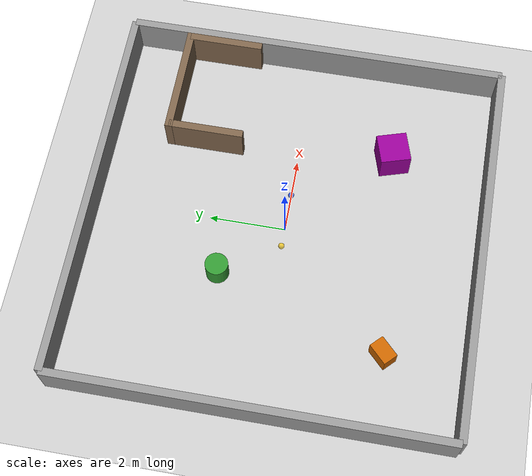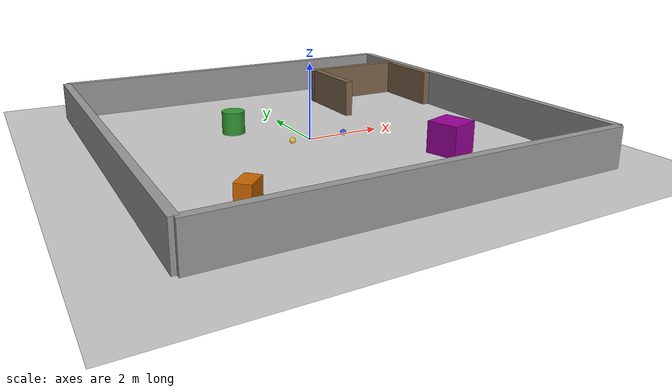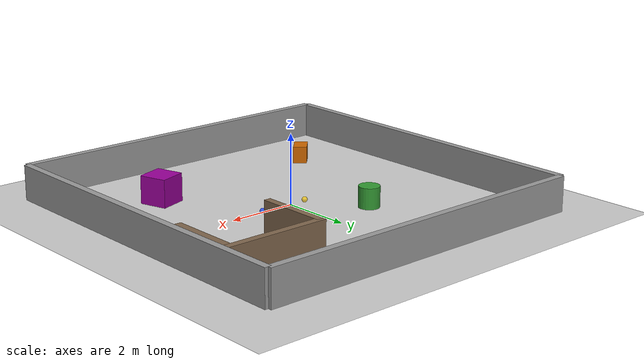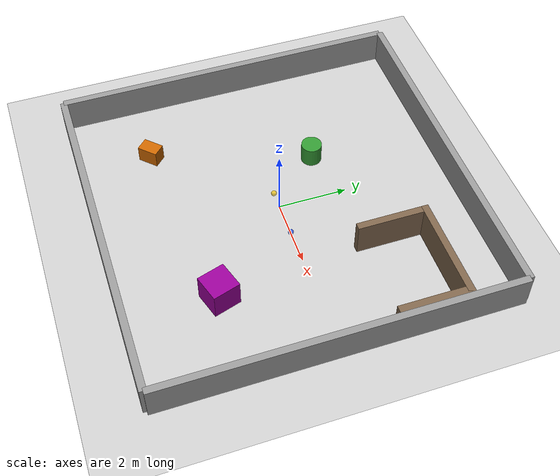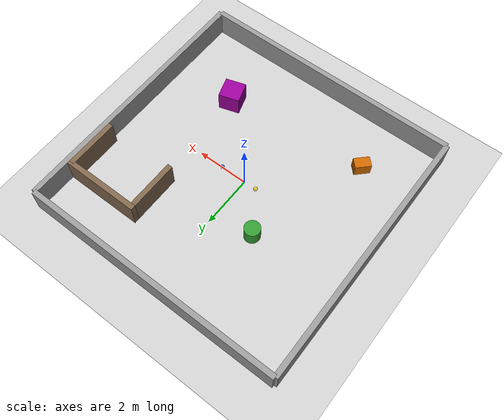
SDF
<?xml version="1.0"?>
<sdf version="1.6">
  <world name="exploration_world">

    <!-- ====================================================
         PHYSICS
         ==================================================== -->
    <physics name="default_physics" default="true" type="ode">
      <max_step_size>0.001</max_step_size>
      <real_time_factor>1.0</real_time_factor>
      <real_time_update_rate>1000</real_time_update_rate>
      <ode>
        <solver>
          <type>quick</type>
          <iters>150</iters>
          <precon_iters>0</precon_iters>
          <sor>1.400000</sor>
        </solver>
        <constraints>
          <cfm>0.00001</cfm>
          <erp>0.2</erp>
          <contact_max_correcting_vel>2000.000000</contact_max_correcting_vel>
          <contact_surface_layer>0.01000</contact_surface_layer>
        </constraints>
      </ode>
    </physics>

    <!-- ====================================================
         SCENE / LIGHTING
         ==================================================== -->
    <scene>
      <ambient>0.4 0.4 0.4 1</ambient>
      <background>0.7 0.7 0.7 1</background>
      <shadows>true</shadows>
    </scene>

    <light name="sun" type="directional">
      <cast_shadows>true</cast_shadows>
      <pose>0 0 10 0 0 0</pose>
      <diffuse>0.8 0.8 0.8 1</diffuse>
      <specular>0.2 0.2 0.2 1</specular>
      <attenuation>
        <range>1000</range>
        <constant>0.9</constant>
        <linear>0.01</linear>
        <quadratic>0.001</quadratic>
      </attenuation>
      <direction>-0.5 0.1 -0.9</direction>
    </light>

    <!-- ====================================================
         GROUND PLANE
         ==================================================== -->
    <model name="ground_plane">
      <static>true</static>
      <link name="link">
        <collision name="collision">
          <geometry>
            <plane>
              <normal>0 0 1</normal>
              <size>100 100</size>
            </plane>
          </geometry>
          <surface>
            <friction>
              <ode>
                <mu>100</mu>
                <mu2>50</mu2>
              </ode>
            </friction>
          </surface>
        </collision>
        <visual name="visual">
          <cast_shadows>false</cast_shadows>
          <geometry>
            <plane>
              <normal>0 0 1</normal>
              <size>100 100</size>
            </plane>
          </geometry>
          <material>
            <script>
              <uri>file://media/materials/scripts/gazebo.material</uri>
              <name>Gazebo/Grey</name>
            </script>
          </material>
        </visual>
      </link>
    </model>

    <!-- North wall: y = +5 -->
    <model name="wall_north">
      <static>true</static>
      <pose>0 5.1 0.5 0 0 0</pose>
      <link name="link">
        <collision name="collision">
          <geometry><box><size>10.2 0.2 1.0</size></box></geometry>
        </collision>
        <visual name="visual">
          <geometry><box><size>10.2 0.2 1.0</size></box></geometry>
          <material>
            <ambient>0.6 0.6 0.6 1</ambient>
            <diffuse>0.6 0.6 0.6 1</diffuse>
          </material>
        </visual>
      </link>
    </model>

    <!-- South wall: y = -5 -->
    <model name="wall_south">
      <static>true</static>
      <pose>0 -5.1 0.5 0 0 0</pose>
      <link name="link">
        <collision name="collision">
          <geometry><box><size>10.2 0.2 1.0</size></box></geometry>
        </collision>
        <visual name="visual">
          <geometry><box><size>10.2 0.2 1.0</size></box></geometry>
          <material>
            <ambient>0.6 0.6 0.6 1</ambient>
            <diffuse>0.6 0.6 0.6 1</diffuse>
          </material>
        </visual>
      </link>
    </model>

    <!-- East wall: x = +5 -->
    <model name="wall_east">
      <static>true</static>
      <pose>5.1 0 0.5 0 0 0</pose>
      <link name="link">
        <collision name="collision">
          <geometry><box><size>0.2 10.2 1.0</size></box></geometry>
        </collision>
        <visual name="visual">
          <geometry><box><size>0.2 10.2 1.0</size></box></geometry>
          <material>
            <ambient>0.6 0.6 0.6 1</ambient>
            <diffuse>0.6 0.6 0.6 1</diffuse>
          </material>
        </visual>
      </link>
    </model>

    <!-- West wall: x = -5 -->
    <model name="wall_west">
      <static>true</static>
      <pose>-5.1 0 0.5 0 0 0</pose>
      <link name="link">
        <collision name="collision">
          <geometry><box><size>0.2 10.2 1.0</size></box></geometry>
        </collision>
        <visual name="visual">
          <geometry><box><size>0.2 10.2 1.0</size></box></geometry>
          <material>
            <ambient>0.6 0.6 0.6 1</ambient>
            <diffuse>0.6 0.6 0.6 1</diffuse>
          </material>
        </visual>
      </link>
    </model>

    <!-- Dead end: North closing wall -->
    <model name="dead_end_wall_north">
      <static>true</static>
      <pose>3.5 3.5 0.5 0 0 0</pose>
      <link name="link">
        <collision name="collision">
          <geometry><box><size>3.0 0.2 1.0</size></box></geometry>
        </collision>
        <visual name="visual">
          <geometry><box><size>3.0 0.2 1.0</size></box></geometry>
          <material>
            <ambient>0.4 0.3 0.2 1</ambient>
            <diffuse>0.5 0.4 0.3 1</diffuse>
          </material>
        </visual>
      </link>
    </model>

    <!-- Dead end: East side wall -->
    <model name="dead_end_wall_east">
      <static>true</static>
      <pose>4.9 2.5 0.5 0 0 0</pose>
      <link name="link">
        <collision name="collision">
          <geometry><box><size>0.2 2.0 1.0</size></box></geometry>
        </collision>
        <visual name="visual">
          <geometry><box><size>0.2 2.0 1.0</size></box></geometry>
          <material>
            <ambient>0.4 0.3 0.2 1</ambient>
            <diffuse>0.5 0.4 0.3 1</diffuse>
          </material>
        </visual>
      </link>
    </model>

    <!-- Dead end: West side wall -->
    <model name="dead_end_wall_west">
      <static>true</static>
      <pose>2.1 2.5 0.5 0 0 0</pose>
      <link name="link">
        <collision name="collision">
          <geometry><box><size>0.2 2.0 1.0</size></box></geometry>
        </collision>
        <visual name="visual">
          <geometry><box><size>0.2 2.0 1.0</size></box></geometry>
          <material>
            <ambient>0.4 0.3 0.2 1</ambient>
            <diffuse>0.5 0.4 0.3 1</diffuse>
          </material>
        </visual>
      </link>
    </model>

    <!-- ====================================================
         SCATTERED OBSTACLES
         ==================================================== -->

    <!-- Obstacle 1: Box in SW quadrant -->
    <model name="obstacle_box_1">
      <static>true</static>
      <pose>-3.0 -3.0 0.25 0 0 0.785</pose>
      <link name="link">
        <collision name="collision">
          <geometry><box><size>0.6 0.4 0.5</size></box></geometry>
        </collision>
        <visual name="visual">
          <geometry><box><size>0.6 0.4 0.5</size></box></geometry>
          <material>
            <ambient>0.8 0.4 0.0 1</ambient>
            <diffuse>0.8 0.4 0.0 1</diffuse>
          </material>
        </visual>
      </link>
    </model>

    <!-- Obstacle 2: Cylinder in center-west area -->
    <model name="obstacle_cylinder_1">
      <static>true</static>
      <pose>-1.5 1.5 0.3 0 0 0</pose>
      <link name="link">
        <collision name="collision">
          <geometry><cylinder><radius>0.3</radius><length>0.6</length></cylinder></geometry>
        </collision>
        <visual name="visual">
          <geometry><cylinder><radius>0.3</radius><length>0.6</length></cylinder></geometry>
          <material>
            <ambient>0.2 0.6 0.2 1</ambient>
            <diffuse>0.2 0.6 0.2 1</diffuse>
          </material>
        </visual>
      </link>
    </model>

    <!-- Obstacle 3: Box in SE quadrant -->
    <model name="obstacle_box_2">
      <static>true</static>
      <pose>2.5 -2.5 0.4 0 0 0.3</pose>
      <link name="link">
        <collision name="collision">
          <geometry><box><size>0.8 0.8 0.8</size></box></geometry>
        </collision>
        <visual name="visual">
          <geometry><box><size>0.8 0.8 0.8</size></box></geometry>
          <material>
            <ambient>0.6 0.0 0.6 1</ambient>
            <diffuse>0.6 0.0 0.6 1</diffuse>
          </material>
        </visual>
      </link>
    </model>

    <model name="spawn_marker_leader">
      <static>true</static>
      <pose>1.0 0.0 0.05 0 0 0</pose>
      <link name="link">
        <visual name="visual">
          <geometry><sphere><radius>0.08</radius></sphere></geometry>
          <material>
            <ambient>0.0 0.0 1.0 0.7</ambient>
            <diffuse>0.0 0.2 1.0 0.7</diffuse>
          </material>
        </visual>
      </link>
    </model>

    <model name="spawn_marker_follower">
      <static>true</static>
      <pose>-0.5 0.0 0.05 0 0 0</pose>
      <link name="link">
        <visual name="visual">
          <geometry><sphere><radius>0.08</radius></sphere></geometry>
          <material>
            <ambient>1.0 0.8 0.0 0.7</ambient>
            <diffuse>1.0 0.8 0.0 0.7</diffuse>
          </material>
        </visual>
      </link>
    </model>

    <!-- ====================================================
         GAZEBO GUI CAMERA INITIAL POSITION
         ==================================================== -->
    <gui fullscreen="0">
      <camera name="user_camera">
        <pose>0 -12 10 0 0.6 1.5708</pose>
        <view_controller>orbit</view_controller>
      </camera>
    </gui>

  </world>
</sdf>
